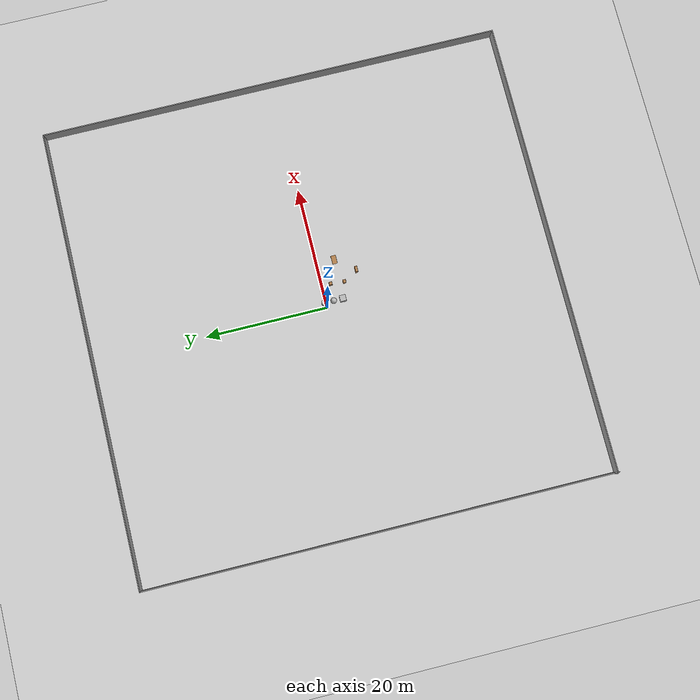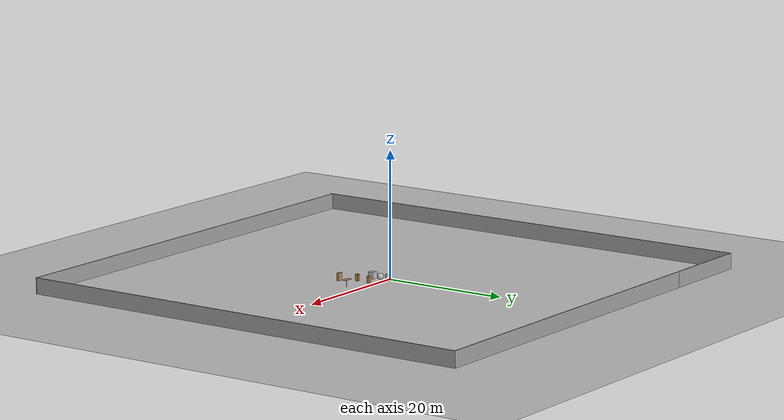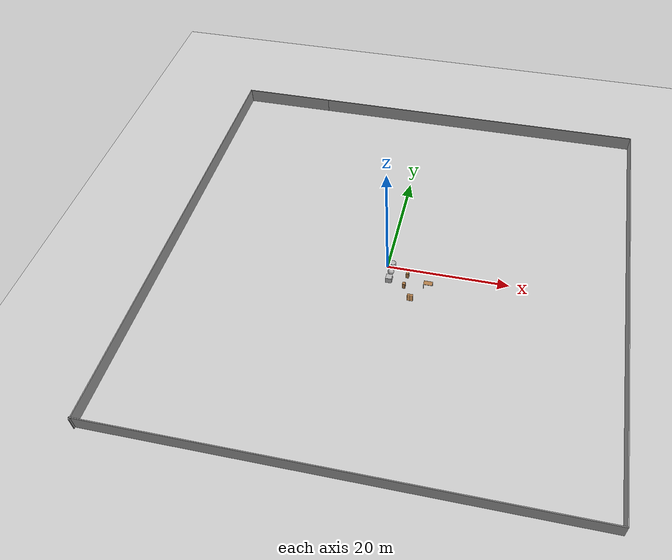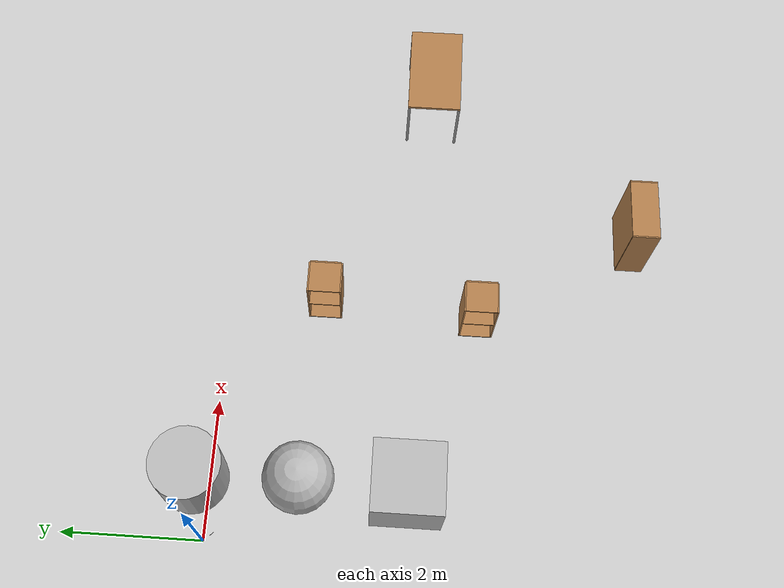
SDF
<sdf version="1.6">
 <world name="default">
  <light name="sun" type="directional">
   <pose>0 0 10 0 -0 0</pose>
   <diffuse>0.8 0.8 0.8 1</diffuse>
   <specular>0.1 0.1 0.1 1</specular>
   <attenuation>
    <range>1000</range>
    <constant>0.9</constant>
    <linear>0.01</linear>
    <quadratic>0.001</quadratic>
   </attenuation>
   <direction>-0.5 0.5 -1</direction>
  </light>
  <model name="ground_plane">
   <static>1</static>
   <link name="link">
    <collision name="collision">
     <geometry><plane><normal>0 0 1</normal><size>100 100</size></plane></geometry>
     <surface><friction><ode><mu>100</mu><mu2>50</mu2></ode></friction></surface>
    </collision>
    <visual name="visual">
     <cast_shadows>0</cast_shadows>
     <geometry><plane><normal>0 0 1</normal><size>100 100</size></plane></geometry>
     <material>
      <script><uri>file://media/materials/scripts/gazebo.material</uri><name>Gazebo/Grey</name></script>
     </material>
    </visual>
   </link>
  </model>
  <gravity>0 0 -9.8</gravity>
  <magnetic_field>6e-06 2.3e-05 -4.2e-05</magnetic_field>
  <atmosphere type="adiabatic"/>
  <physics name="default_physics" default="0" type="ode">
   <max_step_size>0.001</max_step_size>
   <real_time_factor>1</real_time_factor>
   <real_time_update_rate>1000</real_time_update_rate>
  </physics>
  <scene><ambient>0.4 0.4 0.4 1</ambient><background>0.7 0.7 0.7 1</background><shadows>1</shadows></scene>
  <spherical_coordinates>
   <surface_model>EARTH_WGS84</surface_model>
   <latitude_deg>0</latitude_deg>
   <longitude_deg>0</longitude_deg>
   <elevation>0</elevation>
   <heading_deg>0</heading_deg>
  </spherical_coordinates>
  <model name="table">
   <static>0</static>
   <link name="link">
    <collision name="surface">
     <pose>0 0 1 0 -0 0</pose>
     <geometry><box><size>1.5 0.8 0.03</size></box></geometry>
     <surface><friction><ode><mu>0.6</mu><mu2>0.6</mu2></ode></friction></surface>
    </collision>
    <visual name="visual1">
     <pose>0 0 1 0 -0 0</pose>
     <geometry><box><size>1.4 0.8 0.04</size></box></geometry>
     <material>
      <script><uri>file://media/materials/scripts/gazebo.material</uri><name>Gazebo/Wood</name></script>
     </material>
    </visual>
    <collision name="front_left_leg">
     <pose>0.68 0.38 0.5 0 -0 0</pose>
     <geometry><cylinder><radius>0.02</radius><length>1</length></cylinder></geometry>
    </collision>
    <visual name="front_left_leg">
     <pose>0.68 0.38 0.5 0 -0 0</pose>
     <geometry><cylinder><radius>0.02</radius><length>1</length></cylinder></geometry>
     <material>
      <script><uri>file://media/materials/scripts/gazebo.material</uri><name>Gazebo/Grey</name></script>
     </material>
    </visual>
    <collision name="front_right_leg">
     <pose>0.68 -0.38 0.5 0 -0 0</pose>
     <geometry><cylinder><radius>0.02</radius><length>1</length></cylinder></geometry>
    </collision>
    <visual name="front_right_leg">
     <pose>0.68 -0.38 0.5 0 -0 0</pose>
     <geometry><cylinder><radius>0.02</radius><length>1</length></cylinder></geometry>
     <material>
      <script><uri>file://media/materials/scripts/gazebo.material</uri><name>Gazebo/Grey</name></script>
     </material>
    </visual>
    <collision name="back_right_leg">
     <pose>-0.68 -0.38 0.5 0 -0 0</pose>
     <geometry><cylinder><radius>0.02</radius><length>1</length></cylinder></geometry>
    </collision>
    <visual name="back_right_leg">
     <pose>-0.68 -0.38 0.5 0 -0 0</pose>
     <geometry><cylinder><radius>0.02</radius><length>1</length></cylinder></geometry>
     <material>
      <script><uri>file://media/materials/scripts/gazebo.material</uri><name>Gazebo/Grey</name></script>
     </material>
    </visual>
    <collision name="back_left_leg">
     <pose>-0.68 0.38 0.5 0 -0 0</pose>
     <geometry><cylinder><radius>0.02</radius><length>1</length></cylinder></geometry>
    </collision>
    <visual name="back_left_leg">
     <pose>-0.68 0.38 0.5 0 -0 0</pose>
     <geometry><cylinder><radius>0.02</radius><length>1</length></cylinder></geometry>
     <material>
      <script><uri>file://media/materials/scripts/gazebo.material</uri><name>Gazebo/Grey</name></script>
     </material>
    </visual>
    <inertial>
     <inertia><ixx>1</ixx><ixy>0</ixy><ixz>0</ixz><iyy>1</iyy><iyz>0</iyz><izz>1</izz></inertia>
     <mass>1</mass>
    </inertial>
   </link>
   <pose>7.25563 -2.89973 0 0 -0 0</pose>
  </model>
  <model name="metal_peg">
   <link name="link">
    <pose>0 0 0.031 0 -0 0</pose>
    <inertial>
     <mass>0.0121</mass>
     <inertia>
      <ixx>3.90898e-06</ixx>
      <ixy>0</ixy>
      <ixz>0</ixz>
      <iyy>3.90898e-06</iyy>
      <iyz>0</iyz>
      <izz>6.58845e-08</izz>
     </inertia>
    </inertial>
    <collision name="collision">
     <geometry><cylinder><radius>0.0033</radius><length>0.062</length></cylinder></geometry>
     <surface>
      <contact>
       <poissons_ratio>0.305</poissons_ratio>
       <elastic_modulus>2e+11</elastic_modulus>
       <ode><kp>100000</kp><kd>100</kd><max_vel>100</max_vel><min_depth>0.001</min_depth></ode>
      </contact>
      <friction>
       <torsional>
        <coefficient>1</coefficient>
        <use_patch_radius>0</use_patch_radius>
        <surface_radius>0.01</surface_radius>
       </torsional>
      </friction>
     </surface>
    </collision>
    <visual name="visual">
     <geometry><cylinder><radius>0.0033</radius><length>0.062</length></cylinder></geometry>
     <material>
      <script><uri>file://media/materials/scripts/gazebo.material</uri><name>Gazebo/Grey</name></script>
     </material>
    </visual>
   </link>
   <pose>0.125468 -0.125309 0.002299 -1.5708 -0.780888 0.784851</pose>
  </model>
  <model name="textured_shapes">
   <pose>0.856059 -1.26604 0.5 0 -0 0</pose>
   <link name="box">
    <pose>0 -1.5 0 0 -0 0</pose>
    <collision name="collision"><geometry><box><size>1 1 1</size></box></geometry></collision>
    <visual name="visual">
     <geometry><box><size>1 1 1</size></box></geometry>
     <material>
      <script>
       <uri>model://textured_shapes/materials/scripts</uri>
       <uri>model://textured_shapes/materials/textures</uri>
       <name>TexturedShape/Squares</name>
      </script>
     </material>
    </visual>
    <inertial>
     <inertia><ixx>1</ixx><ixy>0</ixy><ixz>0</ixz><iyy>1</iyy><iyz>0</iyz><izz>1</izz></inertia>
     <mass>1</mass>
    </inertial>
   </link>
   <link name="sphere">
    <collision name="collision"><geometry><sphere><radius>0.5</radius></sphere></geometry></collision>
    <visual name="visual">
     <geometry><sphere><radius>0.5</radius></sphere></geometry>
     <material>
      <script>
       <uri>model://textured_shapes/materials/scripts</uri>
       <uri>model://textured_shapes/materials/textures</uri>
       <name>TexturedShape/Squares</name>
      </script>
     </material>
    </visual>
    <inertial>
     <inertia><ixx>1</ixx><ixy>0</ixy><ixz>0</ixz><iyy>1</iyy><iyz>0</iyz><izz>1</izz></inertia>
     <mass>1</mass>
    </inertial>
   </link>
   <link name="cylinder">
    <pose>0 1.5 0 0 -0 0</pose>
    <collision name="collision">
     <geometry><cylinder><radius>0.5</radius><length>1</length></cylinder></geometry>
    </collision>
    <visual name="visual">
     <geometry><cylinder><radius>0.5</radius><length>1</length></cylinder></geometry>
     <material>
      <script>
       <uri>model://textured_shapes/materials/scripts</uri>
       <uri>model://textured_shapes/materials/textures</uri>
       <name>TexturedShape/Squares</name>
      </script>
     </material>
    </visual>
    <inertial>
     <inertia><ixx>1</ixx><ixy>0</ixy><ixz>0</ixz><iyy>1</iyy><iyz>0</iyz><izz>1</izz></inertia>
     <mass>1</mass>
    </inertial>
   </link>
  </model>
  <model name="bookshelf">
   <static>1</static>
   <link name="link">
    <inertial><mass>1</mass></inertial>
    <collision name="back">
     <pose>0 0.005 0.6 0 -0 0</pose>
     <geometry><box><size>0.9 0.01 1.2</size></box></geometry>
    </collision>
    <visual name="visual1">
     <pose>0 0.005 0.6 0 -0 0</pose>
     <geometry><box><size>0.9 0.01 1.2</size></box></geometry>
     <material>
      <script><uri>file://media/materials/scripts/gazebo.material</uri><name>Gazebo/Wood</name></script>
     </material>
    </visual>
    <collision name="left_side">
     <pose>0.45 -0.195 0.6 0 -0 0</pose>
     <geometry><box><size>0.02 0.4 1.2</size></box></geometry>
    </collision>
    <visual name="visual2">
     <pose>0.45 -0.195 0.6 0 -0 0</pose>
     <geometry><box><size>0.02 0.4 1.2</size></box></geometry>
     <material>
      <script><uri>file://media/materials/scripts/gazebo.material</uri><name>Gazebo/Wood</name></script>
     </material>
    </visual>
    <collision name="right_side">
     <pose>-0.45 -0.195 0.6 0 -0 0</pose>
     <geometry><box><size>0.02 0.4 1.2</size></box></geometry>
    </collision>
    <visual name="visual3">
     <pose>-0.45 -0.195 0.6 0 -0 0</pose>
     <geometry><box><size>0.02 0.4 1.2</size></box></geometry>
     <material>
      <script><uri>file://media/materials/scripts/gazebo.material</uri><name>Gazebo/Wood</name></script>
     </material>
    </visual>
    <collision name="bottom">
     <pose>0 -0.195 0.03 0 -0 0</pose>
     <geometry><box><size>0.88 0.4 0.06</size></box></geometry>
    </collision>
    <visual name="visual4">
     <pose>0 -0.195 0.03 0 -0 0</pose>
     <geometry><box><size>0.88 0.4 0.06</size></box></geometry>
     <material>
      <script><uri>file://media/materials/scripts/gazebo.material</uri><name>Gazebo/Wood</name></script>
     </material>
    </visual>
    <collision name="top">
     <pose>0 -0.195 1.19 0 -0 0</pose>
     <geometry><box><size>0.88 0.4 0.02</size></box></geometry>
    </collision>
    <visual name="visual5">
     <pose>0 -0.195 1.19 0 -0 0</pose>
     <geometry><box><size>0.88 0.4 0.02</size></box></geometry>
     <material>
      <script><uri>file://media/materials/scripts/gazebo.material</uri><name>Gazebo/Wood</name></script>
     </material>
    </visual>
    <collision name="low_shelf">
     <pose>0 -0.195 0.43 0 -0 0</pose>
     <geometry><box><size>0.88 0.4 0.02</size></box></geometry>
    </collision>
    <visual name="visual6">
     <pose>0 -0.195 0.43 0 -0 0</pose>
     <geometry><box><size>0.88 0.4 0.02</size></box></geometry>
     <material>
      <script><uri>file://media/materials/scripts/gazebo.material</uri><name>Gazebo/Wood</name></script>
     </material>
    </visual>
    <collision name="high_shelf">
     <pose>0 -0.195 0.8 0 -0 0</pose>
     <geometry><box><size>0.88 0.4 0.02</size></box></geometry>
    </collision>
    <visual name="visual7">
     <pose>0 -0.195 0.8 0 -0 0</pose>
     <geometry><box><size>0.88 0.4 0.02</size></box></geometry>
     <material>
      <script><uri>file://media/materials/scripts/gazebo.material</uri><name>Gazebo/Wood</name></script>
     </material>
    </visual>
   </link>
   <pose>4.9232 -5.81457 0 0 -0 0</pose>
  </model>
  <model name="ball_bearing">
   <link name="link">
    <pose>0 0 0.003 0 -0 0</pose>
    <inertial>
     <mass>0.0011</mass>
     <inertia>
      <ixx>3.96e-09</ixx>
      <ixy>0</ixy>
      <ixz>0</ixz>
      <iyy>3.96e-09</iyy>
      <iyz>0</iyz>
      <izz>3.96e-09</izz>
     </inertia>
    </inertial>
    <collision name="collision">
     <geometry><sphere><radius>0.003</radius></sphere></geometry>
     <surface>
      <contact>
       <poissons_ratio>0.305</poissons_ratio>
       <elastic_modulus>2e+11</elastic_modulus>
       <ode><kp>100000</kp><kd>100</kd><max_vel>100</max_vel><min_depth>0.001</min_depth></ode>
      </contact>
      <friction>
       <torsional>
        <coefficient>1</coefficient>
        <use_patch_radius>0</use_patch_radius>
        <surface_radius>0.01</surface_radius>
       </torsional>
      </friction>
     </surface>
    </collision>
    <visual name="visual">
     <geometry><sphere><radius>0.003</radius></sphere></geometry>
     <material>
      <script><uri>file://media/materials/scripts/gazebo.material</uri><name>Gazebo/Grey</name></script>
     </material>
    </visual>
    <velocity_decay><linear>0</linear><angular>0.005</angular></velocity_decay>
   </link>
   <pose>3.55328 -3.691 -0.001644 0 -0 0</pose>
  </model>
  <model name="cabinet">
   <static>1</static>
   <link name="cabinet_bottom_plate">
    <inertial>
     <pose>0 0 -1 0 -0 0</pose>
     <inertia><ixx>2.05</ixx><ixy>0</ixy><ixz>0</ixz><iyy>2.05</iyy><iyz>0</iyz><izz>2.05</izz></inertia>
     <mass>25</mass>
    </inertial>
    <collision name="cabinet_bottom_plate_geom">
     <pose>0 0 0.01 0 -0 0</pose>
     <geometry><box><size>0.45 0.45 0.02</size></box></geometry>
    </collision>
    <visual name="cabinet_bottom_plate_geom_visual">
     <pose>0 0 0.01 0 -0 0</pose>
     <geometry><box><size>0.45 0.45 0.02</size></box></geometry>
     <material>
      <script><uri>file://media/materials/scripts/gazebo.material</uri><name>Gazebo/Wood</name></script>
     </material>
    </visual>
    <collision name="cabinet_bottom_plate_geom_cabinet_back_plate">
     <pose>0.235 0 0.51 0 -0 0</pose>
     <geometry><box><size>0.02 0.45 1.02</size></box></geometry>
    </collision>
    <visual name="cabinet_bottom_plate_geom_cabinet_back_plate_visual">
     <pose>0.235 0 0.51 0 -0 0</pose>
     <geometry><box><size>0.02 0.45 1.02</size></box></geometry>
     <material>
      <script><uri>file://media/materials/scripts/gazebo.material</uri><name>Gazebo/Wood</name></script>
     </material>
    </visual>
    <collision name="cabinet_bottom_plate_geom_cabinet_left_plate">
     <pose>0 0.235 0.51 0 -0 0</pose>
     <geometry><box><size>0.45 0.02 1.02</size></box></geometry>
    </collision>
    <visual name="cabinet_bottom_plate_geom_cabinet_left_plate_visual">
     <pose>0 0.235 0.51 0 -0 0</pose>
     <geometry><box><size>0.45 0.02 1.02</size></box></geometry>
     <material>
      <script><uri>file://media/materials/scripts/gazebo.material</uri><name>Gazebo/Wood</name></script>
     </material>
    </visual>
    <collision name="cabinet_bottom_plate_geom_cabinet_middle_plate">
     <pose>0 0 0.51 0 -0 0</pose>
     <geometry><box><size>0.45 0.45 0.02</size></box></geometry>
    </collision>
    <visual name="cabinet_bottom_plate_geom_cabinet_middle_plate_visual">
     <pose>0 0 0.51 0 -0 0</pose>
     <geometry><box><size>0.45 0.45 0.02</size></box></geometry>
     <material>
      <script><uri>file://media/materials/scripts/gazebo.material</uri><name>Gazebo/Wood</name></script>
     </material>
    </visual>
    <collision name="cabinet_bottom_plate_geom_cabinet_right_plate">
     <pose>0 -0.235 0.51 0 -0 0</pose>
     <geometry><box><size>0.45 0.02 1.02</size></box></geometry>
    </collision>
    <visual name="cabinet_bottom_plate_geom_cabinet_right_plate_visual">
     <pose>0 -0.235 0.51 0 -0 0</pose>
     <geometry><box><size>0.45 0.02 1.02</size></box></geometry>
     <material>
      <script><uri>file://media/materials/scripts/gazebo.material</uri><name>Gazebo/Wood</name></script>
     </material>
    </visual>
    <collision name="cabinet_bottom_plate_geom_cabinet_top_plate">
     <pose>0 0 1.01 0 -0 0</pose>
     <geometry><box><size>0.45 0.45 0.02</size></box></geometry>
    </collision>
    <visual name="cabinet_bottom_plate_geom_cabinet_top_plate_visual">
     <pose>0 0 1.01 0 -0 0</pose>
     <geometry><box><size>0.45 0.45 0.02</size></box></geometry>
     <material>
      <script><uri>file://media/materials/scripts/gazebo.material</uri><name>Gazebo/Wood</name></script>
     </material>
    </visual>
   </link>
   <pose>3.46692 -3.68612 0 0 -0 0</pose>
  </model>
  <model name="cabinet_clone">
   <static>1</static>
   <link name="cabinet_bottom_plate">
    <inertial>
     <pose>0 0 -1 0 -0 0</pose>
     <inertia><ixx>2.05</ixx><ixy>0</ixy><ixz>0</ixz><iyy>2.05</iyy><iyz>0</iyz><izz>2.05</izz></inertia>
     <mass>25</mass>
    </inertial>
    <collision name="cabinet_bottom_plate_geom">
     <pose>0 0 0.01 0 -0 0</pose>
     <geometry><box><size>0.45 0.45 0.02</size></box></geometry>
    </collision>
    <visual name="cabinet_bottom_plate_geom_visual">
     <pose>0 0 0.01 0 -0 0</pose>
     <geometry><box><size>0.45 0.45 0.02</size></box></geometry>
     <material>
      <script><uri>file://media/materials/scripts/gazebo.material</uri><name>Gazebo/Wood</name></script>
     </material>
    </visual>
    <collision name="cabinet_bottom_plate_geom_cabinet_back_plate">
     <pose>0.235 0 0.51 0 -0 0</pose>
     <geometry><box><size>0.02 0.45 1.02</size></box></geometry>
    </collision>
    <visual name="cabinet_bottom_plate_geom_cabinet_back_plate_visual">
     <pose>0.235 0 0.51 0 -0 0</pose>
     <geometry><box><size>0.02 0.45 1.02</size></box></geometry>
     <material>
      <script><uri>file://media/materials/scripts/gazebo.material</uri><name>Gazebo/Wood</name></script>
     </material>
    </visual>
    <collision name="cabinet_bottom_plate_geom_cabinet_left_plate">
     <pose>0 0.235 0.51 0 -0 0</pose>
     <geometry><box><size>0.45 0.02 1.02</size></box></geometry>
    </collision>
    <visual name="cabinet_bottom_plate_geom_cabinet_left_plate_visual">
     <pose>0 0.235 0.51 0 -0 0</pose>
     <geometry><box><size>0.45 0.02 1.02</size></box></geometry>
     <material>
      <script><uri>file://media/materials/scripts/gazebo.material</uri><name>Gazebo/Wood</name></script>
     </material>
    </visual>
    <collision name="cabinet_bottom_plate_geom_cabinet_middle_plate">
     <pose>0 0 0.51 0 -0 0</pose>
     <geometry><box><size>0.45 0.45 0.02</size></box></geometry>
    </collision>
    <visual name="cabinet_bottom_plate_geom_cabinet_middle_plate_visual">
     <pose>0 0 0.51 0 -0 0</pose>
     <geometry><box><size>0.45 0.45 0.02</size></box></geometry>
     <material>
      <script><uri>file://media/materials/scripts/gazebo.material</uri><name>Gazebo/Wood</name></script>
     </material>
    </visual>
    <collision name="cabinet_bottom_plate_geom_cabinet_right_plate">
     <pose>0 -0.235 0.51 0 -0 0</pose>
     <geometry><box><size>0.45 0.02 1.02</size></box></geometry>
    </collision>
    <visual name="cabinet_bottom_plate_geom_cabinet_right_plate_visual">
     <pose>0 -0.235 0.51 0 -0 0</pose>
     <geometry><box><size>0.45 0.02 1.02</size></box></geometry>
     <material>
      <script><uri>file://media/materials/scripts/gazebo.material</uri><name>Gazebo/Wood</name></script>
     </material>
    </visual>
    <collision name="cabinet_bottom_plate_geom_cabinet_top_plate">
     <pose>0 0 1.01 0 -0 0</pose>
     <geometry><box><size>0.45 0.45 0.02</size></box></geometry>
    </collision>
    <visual name="cabinet_bottom_plate_geom_cabinet_top_plate_visual">
     <pose>0 0 1.01 0 -0 0</pose>
     <geometry><box><size>0.45 0.45 0.02</size></box></geometry>
     <material>
      <script><uri>file://media/materials/scripts/gazebo.material</uri><name>Gazebo/Wood</name></script>
     </material>
    </visual>
   </link>
   <pose>3.63684 -1.4375 0 0 -0 0</pose>
  </model>
  <model name="Outdoors_Surrounding_wall">
   <pose>1.04886 0.270647 0 0 -0 0</pose>
   <link name="Wall_10">
    <collision name="Wall_10_Collision">
     <geometry><box><size>76.25 0.15 2.5</size></box></geometry>
     <pose>0 0 1.25 0 -0 0</pose>
    </collision>
    <visual name="Wall_10_Visual">
     <pose>0 0 1.25 0 -0 0</pose>
     <geometry><box><size>76.25 0.15 2.5</size></box></geometry>
     <material>
      <script><uri>file://media/materials/scripts/gazebo.material</uri><name>Gazebo/Grey</name></script>
      <ambient>1 1 1 1</ambient>
     </material>
    </visual>
    <pose>-37.1674 -0.000397 0 0 0 -1.5708</pose>
   </link>
   <link name="Wall_2">
    <collision name="Wall_2_Collision">
     <geometry><box><size>59.25 0.15 2.5</size></box></geometry>
     <pose>0 0 1.25 0 -0 0</pose>
    </collision>
    <visual name="Wall_2_Visual">
     <pose>0 0 1.25 0 -0 0</pose>
     <geometry><box><size>59.25 0.15 2.5</size></box></geometry>
     <material>
      <script><uri>file://media/materials/scripts/gazebo.material</uri><name>Gazebo/Grey</name></script>
      <ambient>1 1 1 1</ambient>
     </material>
    </visual>
    <pose>7.75 38.0504 0 0 -0 0</pose>
   </link>
   <link name="Wall_3">
    <collision name="Wall_3_Collision">
     <geometry><box><size>76 0.15 2.5</size></box></geometry>
     <pose>0 0 1.25 0 -0 0</pose>
    </collision>
    <visual name="Wall_3_Visual">
     <pose>0 0 1.25 0 -0 0</pose>
     <geometry><box><size>76 0.15 2.5</size></box></geometry>
     <material>
      <script><uri>file://media/materials/scripts/gazebo.material</uri><name>Gazebo/Grey</name></script>
      <ambient>1 1 1 1</ambient>
     </material>
    </visual>
    <pose>37.3 0.125394 0 0 0 -1.5708</pose>
   </link>
   <link name="Wall_4">
    <collision name="Wall_4_Collision">
     <geometry><box><size>74.75 0.15 2.5</size></box></geometry>
     <pose>0 0 1.25 0 -0 0</pose>
    </collision>
    <visual name="Wall_4_Visual">
     <pose>0 0 1.25 0 -0 0</pose>
     <geometry><box><size>74.75 0.15 2.5</size></box></geometry>
     <material>
      <script><uri>file://media/materials/scripts/gazebo.material</uri><name>Gazebo/Grey</name></script>
      <ambient>1 1 1 1</ambient>
     </material>
    </visual>
    <pose>-2e-06 -37.7996 0 0 -0 3.14159</pose>
   </link>
   <link name="Wall_7">
    <collision name="Wall_7_Collision">
     <geometry><box><size>16 0.15 2.5</size></box></geometry>
     <pose>0 0 1.25 0 -0 0</pose>
    </collision>
    <visual name="Wall_7_Visual">
     <pose>0 0 1.25 0 -0 0</pose>
     <geometry><box><size>16 0.15 2.5</size></box></geometry>
     <material>
      <script><uri>file://media/materials/scripts/gazebo.material</uri><name>Gazebo/Grey</name></script>
      <ambient>1 1 1 1</ambient>
     </material>
    </visual>
    <pose>-29.2424 38.0496 0 0 -0 3.14159</pose>
   </link>
   <static>1</static>
  </model>
 </world>
</sdf>
